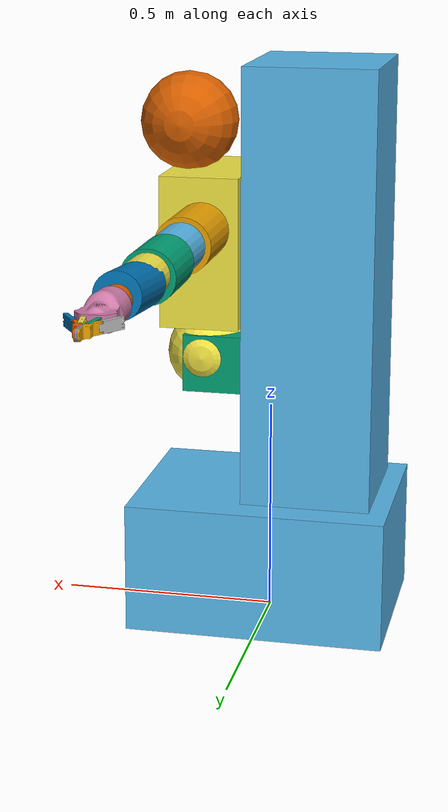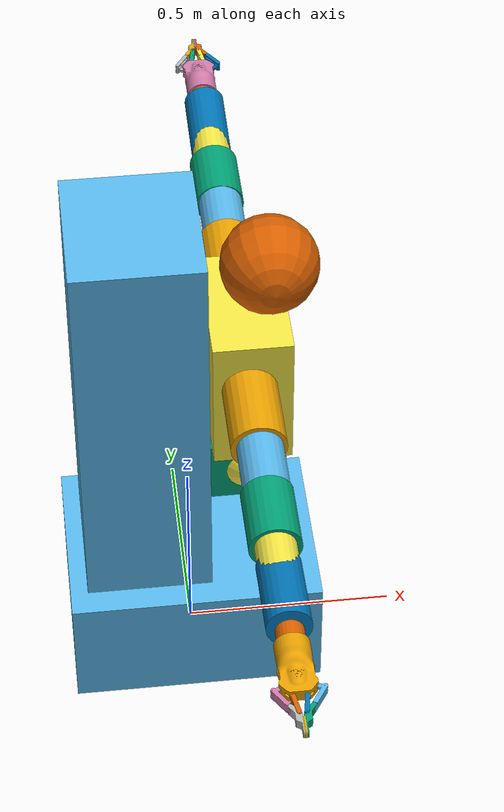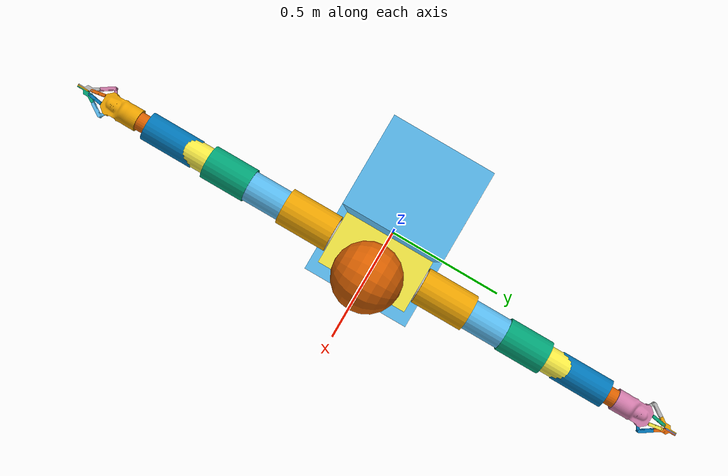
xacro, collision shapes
<?xml version="1.0" ?>
<!-- |    Complete Robot Description for Agibot G1                                     | -->
<!-- |    This file includes the base robot structure and both arms                    | -->
<robot name="genie" xmlns:xacro="http://www.ros.org/wiki/xacro">

	<!-- Include the base robot structure -->
	<xacro:include filename="$(find agibot_g1_description)/xacro/g1_base.xacro"/>

	<!-- Include arm macro -->
	<xacro:include filename="$(find agibot_g1_description)/xacro/g1_arm.xacro"/>

	<!-- Generate left and right arms using macro -->
	<xacro:G1Arm name="left"/>
	<xacro:G1Arm name="right" direction="-1"/>

	<!-- Include gripper -->
	<xacro:include filename="$(find changingtek_description)/xacro/AG2F120S.xacro"/>
	<xacro:AG2F120S name="left"/>
	<xacro:AG2F120S name="right"/>

	<!-- Arm base links -->
	<link name="arm_base"/>

	<!-- Arm base joints -->
	<joint name="arm_base_joint" type="fixed">
		<parent link="body_link2"/>
		<child link="arm_base"/>
		<origin rpy="1.5707963267948966 0.0 0.0" xyz="0.0 -0.305 0.0"/>
	</joint>

	<joint name="left_base_joint" type="fixed">
		<parent link="arm_base"/>
		<child link="left_base_link"/>
		<origin rpy="-1.5707963267948966 0.0 0.0" xyz="0.0 0.025 0.0"/>
	</joint>

	<joint name="right_base_joint" type="fixed">
		<parent link="arm_base"/>
		<child link="right_base_link"/>
		<origin rpy="-1.5707963267948966 0.0 3.141592653589793" xyz="0.0 -0.025 0.0"/>
	</joint>

	<!-- Gripper joints -->
	<joint name="ee_left_joint" type="fixed">
		<parent link="left_end_link"/>
		<child link="left_gripper_base"/>
	</joint>

	<joint name="ee_right_joint" type="fixed">
		<parent link="right_end_link"/>
		<child link="right_gripper_base"/>
	</joint>

</robot>

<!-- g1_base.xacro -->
<!-- |    This document was autogenerated by xacro from urdf/genie.robot.xacro         | -->
<!-- |    EDITING THIS FILE BY HAND IS NOT RECOMMENDED                                 | -->
<robot name="genie" xmlns:xacro="http://www.ros.org/wiki/xacro">
	<!-- Base links -->

	<link name="base_link"/>

	<joint name="base_link_joint" type="fixed">
		<origin xyz="0 0 0.211"/>
		<parent link="base_link"/>
		<child link="base"/>
	</joint>

	<link name="base">
		<inertial>
			<origin xyz="-0.0134486971267798 0.00152103941353612 -0.0320076754329413"/>
			<mass value="23.2085382238952"/>
			<inertia ixx="0.386955641760608" ixy="0.000135417314593726" ixz="0.00669301645720665" iyy="0.366800407621218"
							 iyz="0.000105713634260505" izz="0.546852919828475"/>
		</inertial>
		<visual>
			<geometry>
				<mesh filename="file://$(find agibot_g1_description)/meshes/base/base.obj"/>
			</geometry>
		</visual>
		<collision>
			<origin xyz="-0.10913086 0.0 0.5971875"/>
			<geometry>
				<box size="0.29833984 0.3376392 1.0"/>
			</geometry>
		</collision>
		<collision>
			<origin xyz="0.0 0.0 -0.061"/>
			<geometry>
				<box size="0.5996094 0.449 0.30273438"/>
			</geometry>
		</collision>
	</link>

	<link name="body_link1">
		<inertial>
			<origin xyz="0.0338351537064605 -0.00248044044451858 0.000838431095422365"/>
			<mass value="3.26275452360108"/>
			<inertia ixx="0.0128301877197417" ixy="8.24967996575627e-06" ixz="1.38254543337324e-05" iyy="0.006104110250297"
							 iyz="-7.99392548994692e-06" izz="0.0111721084996867"/>
		</inertial>
		<visual>
			<geometry>
				<mesh filename="file://$(find agibot_g1_description)/meshes/base/body_link1.obj"/>
			</geometry>
		</visual>
		<collision>
			<origin xyz="0.10278320000000002 0.1 -0.013671875"/>
			<geometry>
				<box size="0.16064453 0.05555534399999999 0.1328125"/>
			</geometry>
		</collision>
		<collision>
			<origin xyz="0.10180664 -0.1 0.0"/>
			<geometry>
				<box size="0.16259765999999998 0.04375648500000001 0.16015625"/>
			</geometry>
		</collision>
	</link>

	<link name="body_link2">
		<inertial>
			<origin xyz="0.193733558855111 -0.000484180179482319 -0.00124011422952511"/>
			<mass value="7.53199207979272"/>
			<inertia ixx="0.016546682835947" ixy="0.000274441382484697" ixz="0.00102757387076422" iyy="0.0445441227006132"
							 iyz="-0.000236858278708531" izz="0.0402036337794082"/>
		</inertial>
		<visual>
			<geometry>
				<mesh filename="file://$(find agibot_g1_description)/meshes/base/body_link2.obj"/>
			</geometry>
			<origin rpy="0.0 0.0 -1.5707963267948966"/>
		</visual>
		<collision>
			<origin xyz="0.0068359375 -0.00034356117 0.0"/>
			<geometry>
				<cylinder radius="0.09662318" length="0.08697056999999997"/>
			</geometry>
		</collision>
		<collision>
			<origin xyz="0.0068359375 -0.00034356117 0.043485284999999985"/>
			<geometry>
				<sphere radius="0.09662318"/>
			</geometry>
		</collision>
		<collision>
			<origin
					xyz="0.0068359375 -0.00034356117 -0.043485284999999985"/>
			<geometry>
				<sphere radius="0.09662318"/>
			</geometry>
		</collision>
		<collision>
			<origin
					rpy="0.0 0.0 -1.5708"
					xyz="0.008 -0.248 0.0"/>
			<geometry>
				<box size="0.34570312 0.18107724 0.3125"/>
			</geometry>
		</collision>
	</link>

	<link name="head_link1">
		<inertial>
			<origin xyz="0.0446068140025754 0.00241753143645124 0.0528373754603559"/>
			<mass value="0.414342871921048"/>
			<inertia ixx="0.000158695728344024" ixy="-1.04590928109554e-06" ixz="-6.58530903139189e-06"
							 iyy="0.000117742864399469" iyz="-2.65011299996072e-06" izz="0.000170947040827065"/>
		</inertial>
		<visual>
			<geometry>
				<mesh filename="file://$(find agibot_g1_description)/meshes/base/head_link1.obj"/>
			</geometry>
		</visual>
	</link>

	<link name="head_link2">
		<inertial>
			<origin xyz="0.0257009265816389 0.0316254080188787 -3.77390122592164e-05"/>
			<mass value="0.707063977171202"/>
			<inertia ixx="0.00205409595373573" ixy="0.000347730118005016" ixz="-2.13857752451204e-06"
							 iyy="0.00200357281313449" iyz="5.16150600423908e-08" izz="0.00184999028444405"/>
		</inertial>
		<visual>
			<geometry>
				<mesh filename="file://$(find agibot_g1_description)/meshes/base/head_link2.obj"/>
			</geometry>
			<origin rpy="-3.141592653589793 0.0 0.0"/>
		</visual>
		<collision>
			<geometry>
				<sphere radius="0.11257068650657154"/>
			</geometry>
			<origin xyz="0.011500973396434619 -0.0252600143348118 0.0008537154007319386"/>
		</collision>
	</link>

	<!-- Base joints -->
	<joint name="body_joint1" type="prismatic">
		<parent link="base"/>
		<child link="body_link1"/>
		<origin xyz="0.0 0.0 0.4285"/>
		<axis xyz="0.0 0.0 1.0"/>
		<limit effort="1000.0" lower="0.0" upper="0.5" velocity="0.1"/>
	</joint>

	<joint name="body_joint2" type="revolute">
		<parent link="body_link1"/>
		<child link="body_link2"/>
		<origin rpy="-1.5707963267948966 0.0 0.0" xyz="0.131 0.0 0.0"/>
		<axis xyz="0.0 0.0 1.0"/>
		<limit effort="100.0" lower="0.0" upper="1.5707963267948966" velocity="0.5"/>
	</joint>

	<!-- Head joints -->
	<joint name="head_joint1" type="revolute">
		<parent link="body_link2"/>
		<child link="head_link1"/>
		<origin rpy="1.5707963267948966 0.0 0.0" xyz="0.0 -0.441 0.0"/>
		<axis xyz="0.0 0.0 1.0"/>
		<limit effort="50.0" lower="-1.5707963267948966" upper="1.5707963267948966" velocity="1.0"/>
	</joint>

	<joint name="head_joint2" type="revolute">
		<parent link="head_link1"/>
		<child link="head_link2"/>
		<origin rpy="-1.5707963267948966 0.0 0.0" xyz="0.050238 0.0 0.060065"/>
		<axis xyz="0.0 0.0 1.0"/>
		<limit effort="50.0" lower="-0.3490658503988659" upper="0.5235987755982988" velocity="1.0"/>
	</joint>

</robot>

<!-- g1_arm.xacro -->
<robot name="g1_arm" xmlns:xacro="http://www.ros.org/wiki/xacro">

	<xacro:macro name="G1Arm" params="name direction:=1">
		<xacro:property name="prefix" value="${name + '_' if name else ''}"/>

		<!-- Arm base link -->
		<link name="${prefix}base_link">
			<inertial>
				<origin xyz="${direction*0.00020641} ${-direction*0.00057488} 0.032296"/>
				<mass value="0.37595"/>
				<inertia ixx="0.00024335" ixy="1.2188e-06" ixz="${direction*2.4281e-06}" iyy="0.00024039"
								 iyz="${-direction*6.6932e-06}" izz="0.00032195"/>
			</inertial>
			<visual>
				<geometry>
					<mesh filename="file://$(find agibot_g1_description)/meshes/arm/base_link.obj"/>
				</geometry>
			</visual>
		</link>

		<!-- Arm links -->
		<link name="${prefix}link1">
			<inertial>
				<origin xyz="${direction*0.0012655} -0.00043778 -0.018388"/>
				<mass value="0.4936"/>
				<inertia ixx="0.00075396" ixy="${-direction*2.4144e-06}" ixz="${-direction*1.8364e-06}" iyy="0.00065755"
								 iyz="1.2174e-06" izz="0.00031848"/>
			</inertial>
			<visual>
				<geometry>
					<mesh filename="file://$(find agibot_g1_description)/meshes/arm/link1.obj"/>
				</geometry>
			</visual>
			<collision>
				<geometry>
					<cylinder length="0.16642063483595848" radius="0.05579268228774888"/>
				</geometry>
				<origin rpy="0.0 0.0 ${-direction*1.2566370614359172}"
								xyz="${direction*0.0026814433577366636} 0.0006133775157398935 -0.04071124829351902"/>
			</collision>
		</link>

		<link name="${prefix}link2">
			<inertial>
				<origin xyz="${-direction*0.00044207} -0.082298 0.00019486"/>
				<mass value="0.46245"/>
				<inertia ixx="0.00065719" ixy="3.7112e-07" ixz="-3.6668e-06" iyy="0.00043459" iyz="-2.517e-05"
								 izz="0.00072571"/>
			</inertial>
			<visual>
				<geometry>
					<mesh filename="file://$(find agibot_g1_description)/meshes/arm/link2.obj"/>
				</geometry>
			</visual>
			<collision>
				<origin rpy="1.5707963267948966 0 0" xyz="0.0 -0.044062052 0.0009765625"/>
				<geometry>
					<cylinder length="0.18085919" radius="0.06302423"/>
				</geometry>
			</collision>
		</link>

		<link name="${prefix}link3">
			<inertial>
				<origin xyz="${direction*0.0010558} 4.4416e-05 -0.056128"/>
				<mass value="0.50026"/>
				<inertia ixx="0.0013016" ixy="3.1401e-06" ixz="1.4255e-05" iyy="0.001427" iyz="2.4361e-05" izz="0.00033587"/>
			</inertial>
			<visual>
				<geometry>
					<mesh filename="file://$(find agibot_g1_description)/meshes/arm/link3.obj"/>
				</geometry>
			</visual>
			<collision>
				<origin xyz="${direction*0.0006559932284637068} -2.2628975236450855e-05 -0.07219303026795387"/>
				<geometry>
					<cylinder length="0.22061403840780258" radius="0.05216156143823925"/>
				</geometry>
			</collision>
		</link>

		<link name="${prefix}link4">
			<inertial>
				<origin xyz="2.4212e-05 -0.06248 0.002536"/>
				<mass value="0.27473"/>
				<inertia ixx="0.00029283" ixy="4.5586e-07" ixz="5.8042e-08" iyy="0.00018852" iyz="-1.116e-06" izz="0.00031238"/>
			</inertial>
			<visual>
				<geometry>
					<mesh filename="file://$(find agibot_g1_description)/meshes/arm/link4.obj"/>
				</geometry>
			</visual>
			<collision>
				<origin rpy="1.5707963267948966 0 0" xyz="0.0 -0.03817895 -0.0043945312"/>
				<geometry>
					<cylinder length="0.154955404" radius="0.057891708"/>
				</geometry>
			</collision>
		</link>

		<link name="${prefix}link5">
			<inertial>
				<origin xyz="2.6223e-06 -0.00023041 -0.024141"/>
				<mass value="0.25139"/>
				<inertia ixx="0.00023516" ixy="-6.5868e-09" ixz="-1.9428e-08" iyy="0.00028807" iyz="-1.2108e-05"
								 izz="0.00013068"/>
			</inertial>
			<visual>
				<geometry>
					<mesh filename="file://$(find agibot_g1_description)/meshes/arm/link5.obj"/>
				</geometry>
			</visual>
			<collision>
				<origin xyz="${-direction*0.00022255510134868567} -4.227476414728204e-05 -0.03344946540892124"/>
				<geometry>
					<cylinder length="0.13423806056380272" radius="0.04562028545392604"/>
				</geometry>
			</collision>
		</link>

		<link name="${prefix}link6">
			<inertial>
				<origin xyz="5.0382e-06 -0.086696 0.002556"/>
				<mass value="0.26634"/>
				<inertia ixx="0.00031434" ixy="-1.2113e-09" ixz="1.0011e-07" iyy="0.00014464" iyz="-2.033e-05"
								 izz="0.00032449"/>
			</inertial>
			<visual>
				<geometry>
					<mesh filename="file://$(find agibot_g1_description)/meshes/arm/link6.obj"/>
				</geometry>
			</visual>
			<collision>
				<origin rpy="0.0 -1.4835107730827122 -1.56897465223053"
								xyz="${-direction*1.7782549414354032e-05} -0.05507596972928094 -0.0017447156928267265"/>
				<geometry>
					<cylinder length="0.18272488500982115" radius="0.04857149291994264"/>
				</geometry>
			</collision>
		</link>

		<link name="${prefix}end_link">
			<inertial>
				<origin xyz="-7.5134e-05 -0.00024521 -0.016705"/>
				<mass value="0.06158"/>
				<inertia ixx="1.8407e-05" ixy="3.4818e-08" ixz="-3.2902e-09" iyy="1.818e-05" iyz="1.1326e-07" izz="2.8547e-05"/>
			</inertial>
			<visual>
				<geometry>
					<mesh filename="file://$(find agibot_g1_description)/meshes/arm/link7.obj"/>
				</geometry>
			</visual>
			<collision>
				<origin rpy="3.141592653589793 -1.2246467991473532e-16 3.141592653589793"
								xyz="-4.552953707661759e-05 -0.002300474691790042 -0.02249999972991645"/>
				<geometry>
					<cylinder length="0.045999998692423105" radius="0.030799950382754494"/>
				</geometry>
			</collision>
		</link>

		<!-- Arm joints -->
		<joint name="${prefix}joint1" type="revolute">
			<parent link="${prefix}base_link"/>
			<child link="${prefix}link1"/>
			<origin xyz="0.0 0.0 0.1859"/>
			<axis xyz="0.0 0.0 ${direction*1.0}"/>
			<limit effort="60.0" lower="-3.14" upper="3.14" velocity="3.14"/>
		</joint>

		<joint name="${prefix}joint2" type="revolute">
			<parent link="${prefix}link1"/>
			<child link="${prefix}link2"/>
			<origin rpy="-1.5707963267948966 0.0 ${direction*1.5707963267948966}" xyz="0.0 0.0 0.0"/>
			<axis xyz="0.0 0.0 ${direction*1.0}"/>
			<limit effort="60.0" lower="-2.09" upper="1.48" velocity="3.14"/>
		</joint>

		<joint name="${prefix}joint3" type="revolute">
			<parent link="${prefix}link2"/>
			<child link="${prefix}link3"/>
			<origin rpy="-1.5707963267948966 ${direction*1.5707963267948966} 3.141592653589793" xyz="0.0 -0.305 0.0"/>
			<axis xyz="0.0 0.0 ${direction*1.0}"/>
			<limit effort="60.0" lower="-3.10" upper="3.10" velocity="3.14"/>
		</joint>

		<joint name="${prefix}joint4" type="revolute">
			<parent link="${prefix}link3"/>
			<child link="${prefix}link4"/>
			<origin rpy="-1.5707963267948966 0.0 3.141592653589793" xyz="0.0 0.0 0.0"/>
			<axis xyz="0.0 0.0 ${direction*1.0}"/>
			<limit effort="60.0" lower="-1.48" upper="1.48" velocity="3.14"/>
		</joint>

		<joint name="${prefix}joint5" type="revolute">
			<parent link="${prefix}link4"/>
			<child link="${prefix}link5"/>
			<origin rpy="-1.5707963267948966 0.0 ${-direction*3.141592653589793}" xyz="0.0 -0.1975 0.0"/>
			<axis xyz="0.0 0.0 ${direction*1.0}"/>
			<limit effort="30.0" lower="-3.10" upper="3.10" velocity="3.14"/>
		</joint>

		<joint name="${prefix}joint6" type="revolute">
			<parent link="${prefix}link5"/>
			<child link="${prefix}link6"/>
			<origin rpy="-1.5707963267948966 0.0 0.0" xyz="0.0 0.0 0.0"/>
			<axis xyz="0.0 0.0 ${direction*1.0}"/>
			<limit effort="30.0" lower="-1.74" upper="1.74" velocity="3.14"/>
		</joint>

		<joint name="${prefix}joint7" type="revolute">
			<origin rpy="1.5707963267948966 0.0 0.0" xyz="0.0 -0.1805 0.0"/>
			<parent link="${prefix}link6"/>
			<child link="${prefix}end_link"/>
			<axis xyz="0.0 0.0 ${direction*1.0}"/>
			<limit effort="30.0" lower="-3.10" upper="3.10" velocity="3.14"/>
		</joint>

	</xacro:macro>

</robot>

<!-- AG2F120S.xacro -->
<robot xmlns:xacro="http://ros.org/wiki/xacro">

  <xacro:macro name="AG2F120S" params="name">

    <xacro:property name="prefix" value="${name + '_' if name else ''}"/>

    <link name="${prefix}gripper_base">
      <inertial>
        <origin xyz="1.23989288637867E-06 3.27564415436087E-07 0.0536186975993762"/>
        <mass value="0.443105756928829"/>
        <inertia
            ixx="0.00064200574020552"
            ixy="-1.51180224931458E-07"
            ixz="7.24174172220287E-09"
            iyy="0.00066998312004943"
            iyz="2.73584170951165E-09"
            izz="0.000278949393571484"/>
      </inertial>
      <visual>
        <geometry>
          <mesh filename="file://$(find changingtek_description)/meshes/AG2F120S/gripper_base.obj"/>
        </geometry>
      </visual>
      <collision>
        <geometry>
          <mesh filename="file://$(find changingtek_description)/meshes/AG2F120S/gripper_base.obj"/>
        </geometry>
      </collision>
    </link>

    <link name="${prefix}left_1_link">
      <inertial>
        <origin xyz="0.00656387870913618 0.024850259757102 -9.40817030196858E-10"/>
        <mass value="0.0112899386472626"/>
        <inertia
            ixx="1.96944973967669E-06"
            ixy="6.42395813223716E-07"
            ixz="-1.07950451056367E-14"
            iyy="1.39704780795747E-06"
            iyz="-1.48209813327181E-14"
            izz="2.47457179553145E-06"/>
      </inertial>
      <visual>
        <geometry>
          <mesh filename="file://$(find changingtek_description)/meshes/AG2F120S/link_1.obj"/>
        </geometry>
      </visual>
      <collision>
        <geometry>
          <mesh filename="file://$(find changingtek_description)/meshes/AG2F120S/link_1.obj"/>
        </geometry>
      </collision>
    </link>

    <joint name="${prefix}gripper_joint" type="revolute">
      <origin xyz="-0.032553 0 0.10644" rpy="1.5708 0 3.1416"/>
      <parent link="${prefix}gripper_base"/>
      <child link="${prefix}left_1_link"/>
      <axis xyz="0 0 -1"/>
      <limit lower="0" upper="1" effort="2" velocity="1000"/>
    </joint>

    <link name="${prefix}left_support_link">
      <inertial>
        <origin xyz="-0.011970095332009 0.0238338043684485 -1.36624428992904E-06"/>
        <mass value="0.0140092102116716"/>
        <inertia
            ixx="4.13674978137002E-06"
            ixy="9.81573398608352E-07"
            ixz="-2.87921970465553E-11"
            iyy="1.1362453186293E-06"
            iyz="2.94726072168702E-11"
            izz="4.10226218364235E-06"/>
      </inertial>
      <visual>
        <geometry>
          <mesh filename="file://$(find changingtek_description)/meshes/AG2F120S/support_link.obj"/>
        </geometry>
      </visual>
      <collision>
        <geometry>
          <mesh filename="file://$(find changingtek_description)/meshes/AG2F120S/support_link.obj"/>
        </geometry>
      </collision>
    </link>

    <joint name="${prefix}left_support_joint" type="revolute">
      <origin xyz="-0.0093594 0.056229 0"/>
      <parent link="${prefix}left_1_link"/>
      <child link="${prefix}left_support_link"/>
      <axis xyz="0 0 1"/>
      <limit lower="0" upper="0" effort="0" velocity="0"/>
      <mimic joint="${prefix}gripper_joint" multiplier="1" offset="0"/>
    </joint>

    <link name="${prefix}left_pad_link">
      <inertial>
        <origin xyz="1.46688816627348E-09 0.00209017783344978 -8.17280129359337E-17"/>
        <mass value="0.00332411394949541"/>
        <inertia
            ixx="5.5867126170785E-07"
            ixy="2.9966962370347E-20"
            ixz="1.44978830317617E-23"
            iyy="1.45407135182096E-07"
            iyz="-1.60867378777053E-21"
            izz="4.18250297449997E-07"/>
      </inertial>
      <visual>
        <geometry>
          <mesh filename="file://$(find changingtek_description)/meshes/AG2F120S/pad_link.obj"/>
        </geometry>
      </visual>
      <collision>
        <geometry>
          <mesh filename="file://$(find changingtek_description)/meshes/AG2F120S/pad_link.obj"/>
        </geometry>
      </collision>
    </link>

    <joint name="${prefix}left_pad_joint" type="fixed">
      <origin xyz="-0.022056 0.044306 0"/>
      <parent link="${prefix}left_support_link"/>
      <child link="${prefix}left_pad_link"/>
    </joint>

    <link name="${prefix}left_2_link">
      <inertial>
        <origin xyz="-0.00438952959966343 0.0248815722409523 -2.55135883071891E-05"/>
        <mass value="0.00803955821311802"/>
        <inertia
            ixx="1.15079028835042E-06"
            ixy="1.13853775681911E-07"
            ixz="-1.79492796413463E-10"
            iyy="4.68655200337902E-07"
            iyz="-4.49903912976825E-10"
            izz="8.47367915692972E-07"/>
      </inertial>
      <visual>
        <geometry>
          <mesh filename="file://$(find changingtek_description)/meshes/AG2F120S/link_2.obj"/>
        </geometry>
      </visual>
      <collision>
        <geometry>
          <mesh filename="file://$(find changingtek_description)/meshes/AG2F120S/link_2.obj"/>
        </geometry>
      </collision>
    </link>

    <joint name="${prefix}left_2_joint" type="revolute">
      <origin xyz="-0.017 0 0.122" rpy="1.5708 0 3.1416"/>
      <parent link="${prefix}gripper_base"/>
      <child link="${prefix}left_2_link"/>
      <axis xyz="0 0 -1"/>
      <limit lower="0" upper="0" effort="0" velocity="0"/>
      <mimic joint="${prefix}gripper_joint" multiplier="1" offset="0"/>
    </joint>

    <link name="${prefix}right_2_link">
      <inertial>
        <origin xyz="-0.00438952959968201 0.0248815722409522 -2.5513588307359E-05"/>
        <mass value="0.00803955821311803"/>
        <inertia
            ixx="1.15079028835042E-06"
            ixy="1.13853775681912E-07"
            ixz="-1.79492796413511E-10"
            iyy="4.68655200337903E-07"
            iyz="-4.49903912976901E-10"
            izz="8.47367915692974E-07"/>
      </inertial>
      <visual>
        <geometry>
          <mesh filename="file://$(find changingtek_description)/meshes/AG2F120S/link_2.obj"/>
        </geometry>
      </visual>
      <collision>
        <geometry>
          <mesh filename="file://$(find changingtek_description)/meshes/AG2F120S/link_2.obj"/>
        </geometry>
      </collision>
    </link>

    <joint name="${prefix}right_2_joint" type="revolute">
      <origin xyz="0.017 0 0.122" rpy="1.5708 0 0"/>
      <parent link="${prefix}gripper_base"/>
      <child link="${prefix}right_2_link"/>
      <axis xyz="0 0 1"/>
      <limit lower="0" upper="0" effort="0" velocity="0"/>
      <mimic joint="${prefix}left_2_joint" multiplier="-1" offset="0"/>
    </joint>

    <link name="${prefix}right_1_link">
      <inertial>
        <origin xyz="0.00656387870564603 0.0248502597572661 -9.40812230336897E-10"/>
        <mass value="0.0112899386472626"/>
        <inertia
            ixx="1.96944973967663E-06"
            ixy="6.42395813223747E-07"
            ixz="-1.07950449101923E-14"
            iyy="1.39704780795753E-06"
            iyz="-1.48209815851649E-14"
            izz="2.47457179553146E-06"/>
      </inertial>
      <visual>
        <geometry>
          <mesh filename="file://$(find changingtek_description)/meshes/AG2F120S/link_1.obj"/>
        </geometry>
      </visual>
      <collision>
        <geometry>
          <mesh filename="file://$(find changingtek_description)/meshes/AG2F120S/link_1.obj"/>
        </geometry>
      </collision>
    </link>

    <joint name="${prefix}right_1_joint" type="revolute">
      <origin xyz="0.032553 0 0.10644" rpy="1.5708 0 0"/>
      <parent link="${prefix}gripper_base"/>
      <child link="${prefix}right_1_link"/>
      <axis xyz="0 0 1"/>
      <limit lower="0" upper="0" effort="0" velocity="0"/>
      <mimic joint="${prefix}gripper_joint" multiplier="-1" offset="0"/>
    </joint>

    <link name="${prefix}right_support_link">
      <inertial>
        <origin xyz="-0.011970095112324 0.0238338043682057 -1.36624428997256E-06"/>
        <mass value="0.0140092102116716"/>
        <inertia
            ixx="4.13674978136988E-06"
            ixy="9.81573398608576E-07"
            ixz="-2.87921970465403E-11"
            iyy="1.13624531862944E-06"
            iyz="2.94726072165632E-11"
            izz="4.10226218364236E-06"/>
      </inertial>
      <visual>
        <geometry>
          <mesh filename="file://$(find changingtek_description)/meshes/AG2F120S/support_link.obj"/>
        </geometry>
      </visual>
      <collision>
        <geometry>
          <mesh filename="file://$(find changingtek_description)/meshes/AG2F120S/support_link.obj"/>
        </geometry>
      </collision>
    </link>

    <joint name="${prefix}right_support_joint" type="revolute">
      <origin xyz="-0.0093594 0.056229 0"/>
      <parent link="${prefix}right_1_link"/>
      <child link="${prefix}right_support_link"/>
      <axis xyz="0 0 1"/>
      <limit lower="0" upper="0" effort="0" velocity="0"/>
      <mimic joint="${prefix}right_1_joint" multiplier="-1" offset="0"/>
    </joint>

    <link name="${prefix}right_pad_link">
      <inertial>
        <origin xyz="5.43457184440897E-09 0.00209017783344967 -1.21646039264426E-16"/>
        <mass value="0.00332411394949542"/>
        <inertia
            ixx="5.58671261707851E-07"
            ixy="3.06066210315894E-20"
            ixz="1.70379713307979E-23"
            iyy="1.45407135182096E-07"
            iyz="-1.65096420438087E-21"
            izz="4.18250297449998E-07"/>
      </inertial>
      <visual>
        <geometry>
          <mesh filename="file://$(find changingtek_description)/meshes/AG2F120S/pad_link.obj"/>
        </geometry>
      </visual>
      <collision>
        <geometry>
          <mesh filename="file://$(find changingtek_description)/meshes/AG2F120S/pad_link.obj"/>
        </geometry>
      </collision>
    </link>

    <joint name="${prefix}right_pad_joint" type="fixed">
      <origin xyz="-0.022056 0.044306 0"/>
      <parent link="${prefix}right_support_link"/>
      <child link="${prefix}right_pad_link"/>
    </joint>

    <joint name="${prefix}gripper_center_joint" type="fixed">
      <origin xyz="0 0 0.2" rpy="-1.5708 -1.5708 0"/>
      <parent link="${prefix}gripper_base"/>
      <child link="${prefix}gripper_center"/>
    </joint>

    <link name="${prefix}gripper_center"/>

  </xacro:macro>
</robot>
